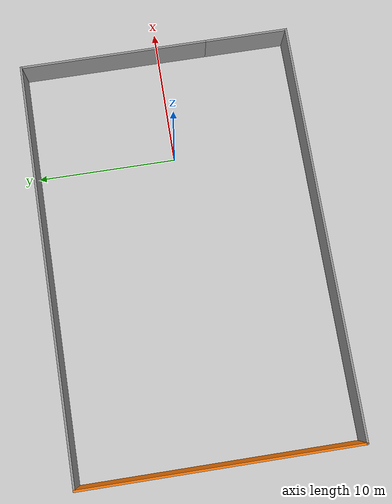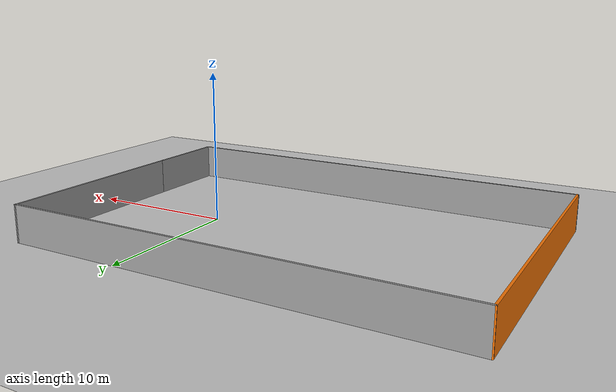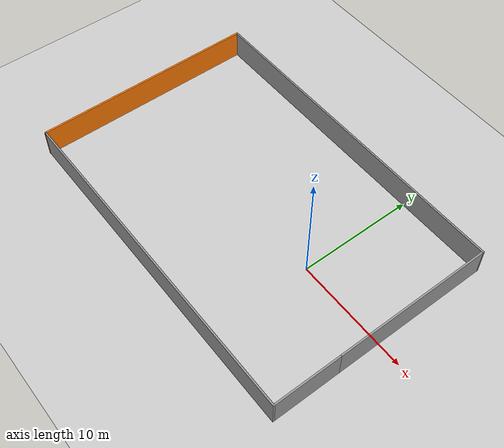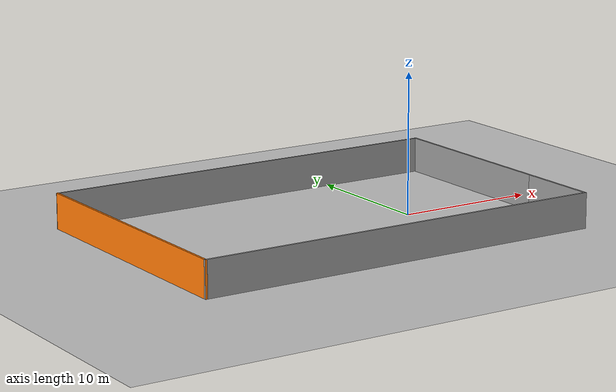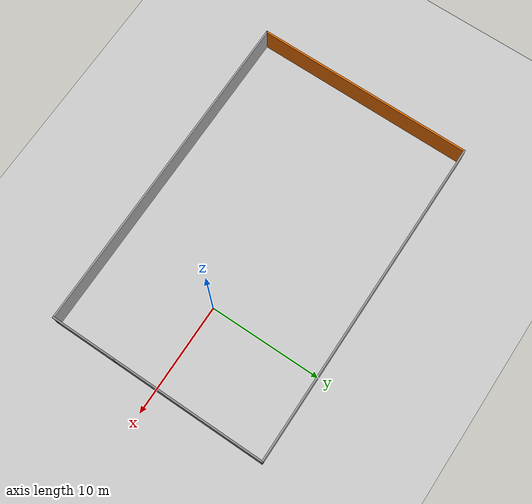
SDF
<sdf version="1.6">
 <world name="default">
  <light name="sun" type="directional">
   <pose>0 0 10 0 -0 0</pose>
   <diffuse>0.8 0.8 0.8 1</diffuse>
   <specular>0.2 0.2 0.2 1</specular>
   <attenuation>
    <range>1000</range>
    <constant>0.9</constant>
    <linear>0.01</linear>
    <quadratic>0.001</quadratic>
   </attenuation>
   <direction>-0.5 0.1 -0.9</direction>
  </light>
  <model name="ground_plane">
   <static>1</static>
   <link name="link">
    <collision name="collision">
     <geometry><plane><normal>0 0 1</normal><size>100 100</size></plane></geometry>
     <surface>
      <contact><collide_bitmask>65535</collide_bitmask></contact>
      <friction><ode><mu>100</mu><mu2>50</mu2></ode></friction>
     </surface>
    </collision>
    <visual name="visual">
     <cast_shadows>0</cast_shadows>
     <geometry><plane><normal>0 0 1</normal><size>100 100</size></plane></geometry>
     <material>
      <script><uri>file://media/materials/scripts/gazebo.material</uri><name>Gazebo/Grey</name></script>
     </material>
    </visual>
   </link>
  </model>
  <gravity>0 0 -9.8</gravity>
  <magnetic_field>6e-06 2.3e-05 -4.2e-05</magnetic_field>
  <atmosphere type="adiabatic"/>
  <physics name="default_physics" default="0" type="ode">
   <max_step_size>0.001</max_step_size>
   <real_time_factor>1</real_time_factor>
   <real_time_update_rate>1000</real_time_update_rate>
  </physics>
  <scene><ambient>0.4 0.4 0.4 1</ambient><background>0.7 0.7 0.7 1</background><shadows>1</shadows></scene>
  <audio><device>default</device></audio>
  <spherical_coordinates>
   <surface_model>EARTH_WGS84</surface_model>
   <latitude_deg>0</latitude_deg>
   <longitude_deg>0</longitude_deg>
   <elevation>0</elevation>
   <heading_deg>0</heading_deg>
  </spherical_coordinates>
  <model name="Building">
   <pose>-6.9614 0.272566 0 0 -0 0</pose>
   <link name="Wall_10">
    <collision name="Wall_10_Collision">
     <geometry><box><size>19.5 0.15 2.5</size></box></geometry>
     <pose>0 0 1.25 0 -0 0</pose>
    </collision>
    <visual name="Wall_10_Visual">
     <pose>0 0 1.25 0 -0 0</pose>
     <geometry><box><size>19.5 0.15 2.5</size></box></geometry>
     <material>
      <script><uri>file://media/materials/scripts/gazebo.material</uri><name>Gazebo/Grey</name></script>
      <ambient>0.996078 0.47451 0.0196078 1</ambient>
     </material>
     <meta><layer>0</layer></meta>
    </visual>
    <pose>-14.8 -0.050126 0 0 -0 1.5708</pose>
   </link>
   <link name="Wall_11">
    <collision name="Wall_11_Collision">
     <geometry><box><size>29.75 0.15 2.5</size></box></geometry>
     <pose>0 0 1.25 0 -0 0</pose>
    </collision>
    <visual name="Wall_11_Visual">
     <pose>0 0 1.25 0 -0 0</pose>
     <geometry><box><size>29.75 0.15 2.5</size></box></geometry>
     <material>
      <script><uri>file://media/materials/scripts/gazebo.material</uri><name>Gazebo/Grey</name></script>
      <ambient>1 1 1 1</ambient>
     </material>
     <meta><layer>0</layer></meta>
    </visual>
    <pose>0 9.67487 0 0 -0 0.003378</pose>
   </link>
   <link name="Wall_4">
    <collision name="Wall_4_Collision">
     <geometry><box><size>13.75 0.15 2.5</size></box></geometry>
     <pose>0 0 1.25 0 -0 0</pose>
    </collision>
    <visual name="Wall_4_Visual">
     <pose>0 0 1.25 0 -0 0</pose>
     <geometry><box><size>13.75 0.15 2.5</size></box></geometry>
     <material>
      <script><uri>file://media/materials/scripts/gazebo.material</uri><name>Gazebo/Grey</name></script>
      <ambient>1 1 1 1</ambient>
     </material>
     <meta><layer>0</layer></meta>
    </visual>
    <pose>14.8 2.92487 0 0 -0 1.5708</pose>
   </link>
   <link name="Wall_8">
    <collision name="Wall_8_Collision">
     <geometry><box><size>6 0.15 2.5</size></box></geometry>
     <pose>0 0 1.25 0 -0 0</pose>
    </collision>
    <visual name="Wall_8_Visual">
     <pose>0 0 1.25 0 -0 0</pose>
     <geometry><box><size>6 0.15 2.5</size></box></geometry>
     <material>
      <script><uri>file://media/materials/scripts/gazebo.material</uri><name>Gazebo/Grey</name></script>
      <ambient>1 1 1 1</ambient>
     </material>
     <meta><layer>0</layer></meta>
    </visual>
    <pose>14.8 -6.80013 0 0 -0 -1.5708</pose>
   </link>
   <link name="Wall_9">
    <collision name="Wall_9_Collision">
     <geometry><box><size>29.75 0.15 2.5</size></box></geometry>
     <pose>0 0 1.25 0 -0 0</pose>
    </collision>
    <visual name="Wall_9_Visual">
     <pose>0 0 1.25 0 -0 0</pose>
     <geometry><box><size>29.75 0.15 2.5</size></box></geometry>
     <material>
      <script><uri>file://media/materials/scripts/gazebo.material</uri><name>Gazebo/Grey</name></script>
      <ambient>1 1 1 1</ambient>
     </material>
     <meta><layer>0</layer></meta>
    </visual>
    <pose>0 -9.72513 0 0 -0 3.14159</pose>
   </link>
   <static>1</static>
  </model>
 </world>
</sdf>
